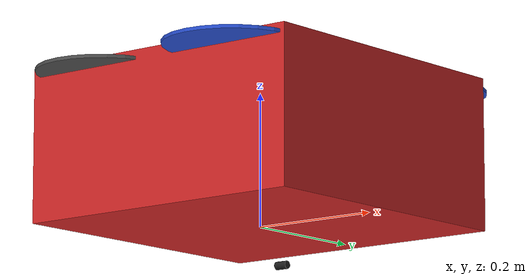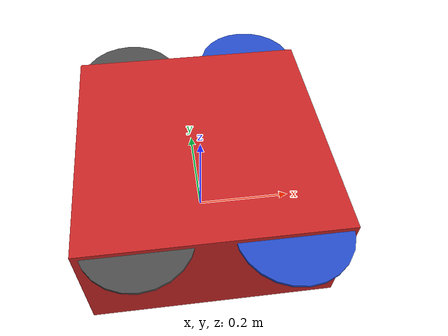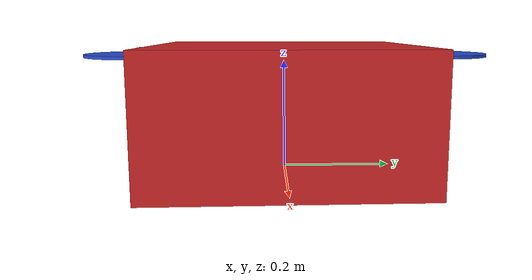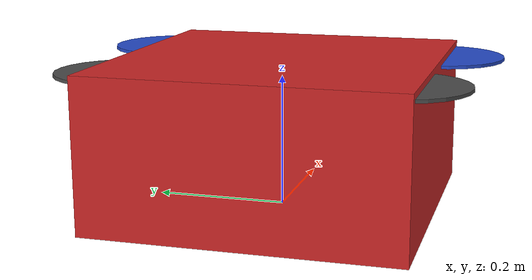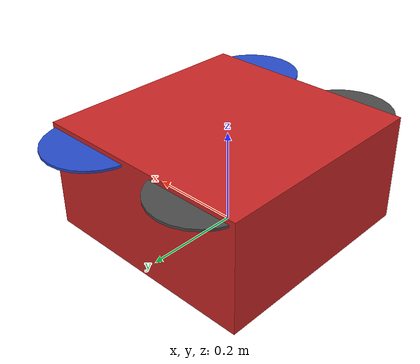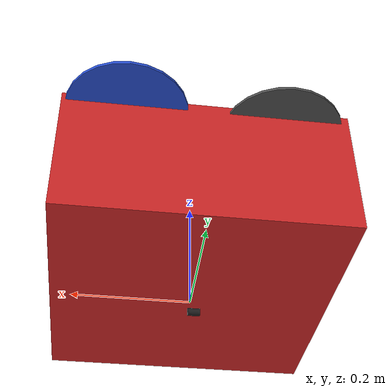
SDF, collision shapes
<?xml version='1.0'?>
<sdf version="1.6">
  <model name="iris_demo">
    <include>
      <uri>model://iris_with_standoffs</uri>
    </include>

    <include>
      <pose >0 0.05 -0.05 0 1.575 0</pose>
      <uri>model://rangefinder</uri>
    </include>

    <joint name="rangefinder_mount" type="fixed">
      <parent>iris_with_standoffs::iris::base_link</parent>
      <child>rangefinder::link</child>
    </joint>

    <!-- range plugins -->
    <plugin name="rotor_0_blade_1" filename="libLiftDragPlugin.so">
      <a0>0.3</a0>
      <alpha_stall>1.4</alpha_stall>
      <cla>4.2500</cla>
      <cda>0.10</cda>
      <cma>0.00</cma>
      <cla_stall>-0.025</cla_stall>
      <cda_stall>0.0</cda_stall>
      <cma_stall>0.0</cma_stall>
      <area>0.002</area>
      <air_density>1.2041</air_density>
      <cp>0.084 0 0</cp>
      <forward>0 1 0</forward>
      <upward>0 0 1</upward>
      <link_name>iris::rotor_0</link_name>
    </plugin>
    <plugin name="rotor_0_blade_2" filename="libLiftDragPlugin.so">
      <a0>0.3</a0>
      <alpha_stall>1.4</alpha_stall>
      <cla>4.2500</cla>
      <cda>0.10</cda>
      <cma>0.00</cma>
      <cla_stall>-0.025</cla_stall>
      <cda_stall>0.0</cda_stall>
      <cma_stall>0.0</cma_stall>
      <area>0.002</area>
      <air_density>1.2041</air_density>
      <cp>-0.084 0 0</cp>
      <forward>0 -1 0</forward>
      <upward>0 0 1</upward>
      <link_name>iris::rotor_0</link_name>
    </plugin>

    <plugin name="rotor_1_blade_1" filename="libLiftDragPlugin.so">
      <a0>0.3</a0>
      <alpha_stall>1.4</alpha_stall>
      <cla>4.2500</cla>
      <cda>0.10</cda>
      <cma>0.00</cma>
      <cla_stall>-0.025</cla_stall>
      <cda_stall>0.0</cda_stall>
      <cma_stall>0.0</cma_stall>
      <area>0.002</area>
      <air_density>1.2041</air_density>
      <cp>0.084 0 0</cp>
      <forward>0 1 0</forward>
      <upward>0 0 1</upward>
      <link_name>iris::rotor_1</link_name>
    </plugin>
    <plugin name="rotor_1_blade_2" filename="libLiftDragPlugin.so">
      <a0>0.3</a0>
      <alpha_stall>1.4</alpha_stall>
      <cla>4.2500</cla>
      <cda>0.10</cda>
      <cma>0.00</cma>
      <cla_stall>-0.025</cla_stall>
      <cda_stall>0.0</cda_stall>
      <cma_stall>0.0</cma_stall>
      <area>0.002</area>
      <air_density>1.2041</air_density>
      <cp>-0.084 0 0</cp>
      <forward>0 -1 0</forward>
      <upward>0 0 1</upward>
      <link_name>iris::rotor_1</link_name>
    </plugin>

    <plugin name="rotor_2_blade_1" filename="libLiftDragPlugin.so">
      <a0>0.3</a0>
      <alpha_stall>1.4</alpha_stall>
      <cla>4.2500</cla>
      <cda>0.10</cda>
      <cma>0.00</cma>
      <cla_stall>-0.025</cla_stall>
      <cda_stall>0.0</cda_stall>
      <cma_stall>0.0</cma_stall>
      <area>0.002</area>
      <air_density>1.2041</air_density>
      <cp>0.084 0 0</cp>
      <forward>0 -1 0</forward>
      <upward>0 0 1</upward>
      <link_name>iris::rotor_2</link_name>
    </plugin>
    <plugin name="rotor_2_blade_2" filename="libLiftDragPlugin.so">
      <a0>0.3</a0>
      <alpha_stall>1.4</alpha_stall>
      <cla>4.2500</cla>
      <cda>0.10</cda>
      <cma>0.00</cma>
      <cla_stall>-0.025</cla_stall>
      <cda_stall>0.0</cda_stall>
      <cma_stall>0.0</cma_stall>
      <area>0.002</area>
      <air_density>1.2041</air_density>
      <cp>-0.084 0 0</cp>
      <forward>0 1 0</forward>
      <upward>0 0 1</upward>
      <link_name>iris::rotor_2</link_name>
    </plugin>

    <plugin name="rotor_3_blade_1" filename="libLiftDragPlugin.so">
      <a0>0.3</a0>
      <alpha_stall>1.4</alpha_stall>
      <cla>4.2500</cla>
      <cda>0.10</cda>
      <cma>0.00</cma>
      <cla_stall>-0.025</cla_stall>
      <cda_stall>0.0</cda_stall>
      <cma_stall>0.0</cma_stall>
      <area>0.002</area>
      <air_density>1.2041</air_density>
      <cp>0.084 0 0</cp>
      <forward>0 -1 0</forward>
      <upward>0 0 1</upward>
      <link_name>iris::rotor_3</link_name>
    </plugin>
    <plugin name="rotor_3_blade_2" filename="libLiftDragPlugin.so">
      <a0>0.3</a0>
      <alpha_stall>1.4</alpha_stall>
      <cla>4.2500</cla>
      <cda>0.10</cda>
      <cma>0.00</cma>
      <cla_stall>-0.025</cla_stall>
      <cda_stall>0.0</cda_stall>
      <cma_stall>0.0</cma_stall>
      <area>0.002</area>
      <air_density>1.2041</air_density>
      <cp>-0.084 0 0</cp>
      <forward>0 1 0</forward>
      <upward>0 0 1</upward>
      <link_name>iris::rotor_3</link_name>
    </plugin>
    <plugin name="arducopter_plugin" filename="libArduPilotPlugin.so">
      <fdm_addr>127.0.0.1</fdm_addr>
      <fdm_port_in>9002</fdm_port_in>
      <fdm_port_out>9003</fdm_port_out>
      <!--
          Require by APM :
          Only change model and gazebo from XYZ to XY-Z coordinates
      -->
      <modelXYZToAirplaneXForwardZDown>0 0 0 3.141593 0 0</modelXYZToAirplaneXForwardZDown>
      <gazeboXYZToNED>0 0 0 3.141593 0 0</gazeboXYZToNED>
      <imuName>demo::iris::iris/imu_link::imu_sensor</imuName>
      <connectionTimeoutMaxCount>5</connectionTimeoutMaxCount>
      <control channel="0">
        <!--
          incoming control command [0, 1]
          so offset it by 0 to get [0, 1]
          and divide max target by 1.
          offset = 0
          multiplier = 838 max rpm / 1 = 838
        -->
        <type>VELOCITY</type>
        <offset>0</offset>
        <p_gain>0.20</p_gain>
        <i_gain>0</i_gain>
        <d_gain>0</d_gain>
        <i_max>0</i_max>
        <i_min>0</i_min>
        <cmd_max>2.5</cmd_max>
        <cmd_min>-2.5</cmd_min>
        <jointName>iris::rotor_0_joint</jointName>
        <multiplier>838</multiplier>
        <controlVelocitySlowdownSim>1</controlVelocitySlowdownSim>
      </control>
      <control channel="1">
        <type>VELOCITY</type>
        <offset>0</offset>
        <p_gain>0.20</p_gain>
        <i_gain>0</i_gain>
        <d_gain>0</d_gain>
        <i_max>0</i_max>
        <i_min>0</i_min>
        <cmd_max>2.5</cmd_max>
        <cmd_min>-2.5</cmd_min>
        <jointName>iris::rotor_1_joint</jointName>
        <multiplier>838</multiplier>
        <controlVelocitySlowdownSim>1</controlVelocitySlowdownSim>
      </control>
      <control channel="2">
        <type>VELOCITY</type>
        <offset>0</offset>
        <p_gain>0.20</p_gain>
        <i_gain>0</i_gain>
        <d_gain>0</d_gain>
        <i_max>0</i_max>
        <i_min>0</i_min>
        <cmd_max>2.5</cmd_max>
        <cmd_min>-2.5</cmd_min>
        <jointName>iris::rotor_2_joint</jointName>
        <multiplier>-838</multiplier>
        <controlVelocitySlowdownSim>1</controlVelocitySlowdownSim>
      </control>
      <control channel="3">
        <type>VELOCITY</type>
        <offset>0</offset>
        <p_gain>0.20</p_gain>
        <i_gain>0</i_gain>
        <d_gain>0</d_gain>
        <i_max>0</i_max>
        <i_min>0</i_min>
        <cmd_max>2.5</cmd_max>
        <cmd_min>-2.5</cmd_min>
        <jointName>iris::rotor_3_joint</jointName>
        <multiplier>-838</multiplier>
        <controlVelocitySlowdownSim>1</controlVelocitySlowdownSim>
      </control>
    </plugin>
    <!-- endrange plugins -->
  </model>
</sdf>

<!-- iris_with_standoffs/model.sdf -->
<sdf version='1.5'>
  <model name='iris'>
    <pose>0 0 0.194923 0 0 0</pose>
    <link name='base_link'>
      <velocity_decay>
        <linear>0.0</linear>
        <angular>0.0</angular>
      </velocity_decay>
      <inertial>
        <pose>0 0 0 0 0 0</pose>
        <mass>1.5</mass>
        <inertia>
          <ixx>0.008</ixx>
          <ixy>0</ixy>
          <ixz>0</ixz>
          <iyy>0.015</iyy>
          <iyz>0</iyz>
          <izz>0.017</izz>
        </inertia>
      </inertial>
      <collision name='base_link_collision'>
        <pose>0 0 -0.08 0 0 0</pose>
        <geometry>
          <box>
            <size>0.47 0.47 0.23</size>
          </box>
        </geometry>
        <surface>
          <contact>
            <ode>
              <max_vel>100.0</max_vel>
              <min_depth>0.001</min_depth>
            </ode>
          </contact>
          <friction>
            <ode>
              <mu>100000.0</mu>
              <mu2>100000.0</mu2>
            </ode>
          </friction>
        </surface>
      </collision>
      <visual name='base_link_visual'>
        <geometry>
          <mesh>
            <uri>model://iris_with_standoffs/meshes/iris.dae</uri>
          </mesh>
        </geometry>
        <material>
          <script>
            <name>Gazebo/Red</name>
          </script>
        </material>
      </visual>

      <visual name='front_left_leg_visual'>
        <pose>0.123 0.22 -0.11 0 0 0</pose>
        <geometry>
          <cylinder>
            <radius>0.005</radius>
            <length>0.17</length>
          </cylinder>
        </geometry>
        <material>
          <script>
            <name>Gazebo/FlatBlack</name>
            <uri>file://media/materials/scripts/gazebo.material</uri>
          </script>
        </material>
      </visual>
      <visual name='front_right_leg_visual'>
        <pose>0.123 -0.22 -0.11 0 0 0</pose>
        <geometry>
          <cylinder>
            <radius>0.005</radius>
            <length>0.17</length>
          </cylinder>
        </geometry>
        <material>
          <script>
            <name>Gazebo/FlatBlack</name>
            <uri>file://media/materials/scripts/gazebo.material</uri>
          </script>
        </material>
      </visual>
      <visual name='rear_left_leg_visual'>
        <pose>-0.140 0.21 -0.11 0 0 0</pose>
        <geometry>
          <cylinder>
            <radius>0.005</radius>
            <length>0.17</length>
          </cylinder>
        </geometry>
        <material>
          <script>
            <name>Gazebo/FlatBlack</name>
            <uri>file://media/materials/scripts/gazebo.material</uri>
          </script>
        </material>
      </visual>
      <visual name='rear_right_leg_visual'>
        <pose>-0.140 -0.21 -0.11 0 0 0</pose>
        <geometry>
          <cylinder>
            <radius>0.005</radius>
            <length>0.17</length>
          </cylinder>
        </geometry>
        <material>
          <script>
            <name>Gazebo/FlatBlack</name>
            <uri>file://media/materials/scripts/gazebo.material</uri>
          </script>
        </material>
      </visual>
    </link>
    <link name='iris/ground_truth/odometry_sensorgt_link'>
      <pose>0 0 0 0 -0 0</pose>
      <inertial>
        <pose>0 0 0 0 -0 0</pose>
        <mass>0.15</mass>
        <inertia>
          <ixx>0.0001</ixx>
          <ixy>0</ixy>
          <ixz>0</ixz>
          <iyy>0.0002</iyy>
          <iyz>0</iyz>
          <izz>0.0002</izz>
        </inertia>
      </inertial>
    </link>
    <joint name='iris/ground_truth/odometry_sensorgt_joint' type='revolute'>
      <child>iris/ground_truth/odometry_sensorgt_link</child>
      <parent>base_link</parent>
      <axis>
        <xyz>0 0 1</xyz>
        <limit>
          <lower>0</lower>
          <upper>0</upper>
          <effort>0</effort>
          <velocity>0</velocity>
        </limit>
        <dynamics>
          <damping>1.0</damping>
        </dynamics>
        <use_parent_model_frame>1</use_parent_model_frame>
      </axis>
      <physics>
        <ode>
          <implicit_spring_damper>1</implicit_spring_damper>
        </ode>
      </physics>
    </joint>
    <link name='iris/imu_link'>
      <inertial>
        <pose>0 0 0 0 0 0</pose>
        <mass>0.15</mass>
        <inertia>
          <ixx>0.00001</ixx>
          <ixy>0</ixy>
          <ixz>0</ixz>
          <iyy>0.00002</iyy>
          <iyz>0</iyz>
          <izz>0.00002</izz>
        </inertia>
      </inertial>
      <sensor name="imu_sensor" type="imu">
        <pose>0 0 0 3.141593 0 0</pose>
        <always_on>1</always_on>
        <update_rate>1000.0</update_rate>
      </sensor>
    </link>
    <joint name='iris/imu_joint' type='revolute'>
      <child>iris/imu_link</child>
      <parent>base_link</parent>
      <axis>
        <xyz>0 0 1</xyz>
        <limit>
          <lower>0</lower>
          <upper>0</upper>
          <effort>0</effort>
          <velocity>0</velocity>
        </limit>
        <dynamics>
          <damping>1.0</damping>
        </dynamics>
        <use_parent_model_frame>1</use_parent_model_frame>
      </axis>
      <physics>
        <ode>
          <implicit_spring_damper>1</implicit_spring_damper>
        </ode>
      </physics>
    </joint>
    <link name='rotor_0'>
      <pose>0.13 -0.22 0.023 0 -0 0</pose>
      <inertial>
        <pose>0 0 0 0 -0 0</pose>
        <mass>0.025</mass>
        <inertia>
          <ixx>9.75e-06</ixx>
          <ixy>0</ixy>
          <ixz>0</ixz>
          <iyy>0.000166704</iyy>
          <iyz>0</iyz>
          <izz>0.000167604</izz>
        </inertia>
      </inertial>
      <collision name='rotor_0_collision'>
        <pose>0 0 0 0 -0 0</pose>
        <geometry>
          <cylinder>
            <length>0.005</length>
            <radius>0.1</radius>
          </cylinder>
        </geometry>
        <surface>
          <contact>
            <ode/>
          </contact>
          <friction>
            <ode/>
          </friction>
        </surface>
      </collision>
      <visual name='rotor_0_visual'>
        <pose>0 0 0 0 -0 0</pose>
        <geometry>
          <mesh>
            <scale>1 1 1</scale>
            <uri>model://iris_with_standoffs/meshes/iris_prop_ccw.dae</uri>
          </mesh>
        </geometry>
        <material>
          <script>
            <name>Gazebo/Blue</name>
            <uri>__default__</uri>
          </script>
        </material>
      </visual>
      <gravity>1</gravity>
      <velocity_decay/>
      <self_collide>0</self_collide>
    </link>
    <joint name='rotor_0_joint' type='revolute'>
      <child>rotor_0</child>
      <parent>base_link</parent>
      <axis>
        <xyz>0 0 1</xyz>
        <limit>
          <lower>-1e+16</lower>
          <upper>1e+16</upper>
        </limit>
        <dynamics>
          <damping>0.004</damping>
        </dynamics>
        <use_parent_model_frame>1</use_parent_model_frame>
      </axis>
      <physics>
        <ode>
          <implicit_spring_damper>1</implicit_spring_damper>
        </ode>
      </physics>
    </joint>
    <link name='rotor_1'>
      <pose>-0.13 0.2 0.023 0 -0 0</pose>
      <inertial>
        <pose>0 0 0 0 -0 0</pose>
        <mass>0.025</mass>
        <inertia>
          <ixx>9.75e-06</ixx>
          <ixy>0</ixy>
          <ixz>0</ixz>
          <iyy>0.000166704</iyy>
          <iyz>0</iyz>
          <izz>0.000167604</izz>
        </inertia>
      </inertial>
      <collision name='rotor_1_collision'>
        <pose>0 0 0 0 -0 0</pose>
        <geometry>
          <cylinder>
            <length>0.005</length>
            <radius>0.1</radius>
          </cylinder>
        </geometry>
        <surface>
          <contact>
            <ode/>
          </contact>
          <friction>
            <ode/>
          </friction>
        </surface>
      </collision>
      <visual name='rotor_1_visual'>
        <pose>0 0 0 0 -0 0</pose>
        <geometry>
          <mesh>
            <scale>1 1 1</scale>
            <uri>model://iris_with_standoffs/meshes/iris_prop_ccw.dae</uri>
          </mesh>
        </geometry>
        <material>
          <script>
            <name>Gazebo/DarkGrey</name>
            <uri>__default__</uri>
          </script>
        </material>
      </visual>
      <gravity>1</gravity>
      <velocity_decay/>
      <self_collide>0</self_collide>
    </link>
    <joint name='rotor_1_joint' type='revolute'>
      <child>rotor_1</child>
      <parent>base_link</parent>
      <axis>
        <xyz>0 0 1</xyz>
        <limit>
          <lower>-1e+16</lower>
          <upper>1e+16</upper>
        </limit>
        <dynamics>
          <damping>0.004</damping>
        </dynamics>
        <use_parent_model_frame>1</use_parent_model_frame>
      </axis>
      <physics>
        <ode>
          <implicit_spring_damper>1</implicit_spring_damper>
        </ode>
      </physics>
    </joint>
    <link name='rotor_2'>
      <pose>0.13 0.22 0.023 0 -0 0</pose>
      <inertial>
        <pose>0 0 0 0 -0 0</pose>
        <mass>0.025</mass>
        <inertia>
          <ixx>9.75e-06</ixx>
          <ixy>0</ixy>
          <ixz>0</ixz>
          <iyy>0.000166704</iyy>
          <iyz>0</iyz>
          <izz>0.000167604</izz>
        </inertia>
      </inertial>
      <collision name='rotor_2_collision'>
        <pose>0 0 0 0 -0 0</pose>
        <geometry>
          <cylinder>
            <length>0.005</length>
            <radius>0.1</radius>
          </cylinder>
        </geometry>
        <surface>
          <contact>
            <ode/>
          </contact>
          <friction>
            <ode/>
          </friction>
        </surface>
      </collision>
      <visual name='rotor_2_visual'>
        <pose>0 0 0 0 -0 0</pose>
        <geometry>
          <mesh>
            <scale>1 1 1</scale>
            <uri>model://iris_with_standoffs/meshes/iris_prop_cw.dae</uri>
          </mesh>
        </geometry>
        <material>
          <script>
            <name>Gazebo/Blue</name>
            <uri>__default__</uri>
          </script>
        </material>
      </visual>
      <gravity>1</gravity>
      <velocity_decay/>
      <self_collide>0</self_collide>
    </link>
    <joint name='rotor_2_joint' type='revolute'>
      <child>rotor_2</child>
      <parent>base_link</parent>
      <axis>
        <xyz>0 0 1</xyz>
        <limit>
          <lower>-1e+16</lower>
          <upper>1e+16</upper>
        </limit>
        <dynamics>
          <damping>0.004</damping>
        </dynamics>
        <use_parent_model_frame>1</use_parent_model_frame>
      </axis>
      <physics>
        <ode>
          <implicit_spring_damper>1</implicit_spring_damper>
        </ode>
      </physics>
    </joint>
    <link name='rotor_3'>
      <pose>-0.13 -0.2 0.023 0 -0 0</pose>
      <inertial>
        <pose>0 0 0 0 -0 0</pose>
        <mass>0.025</mass>
        <inertia>
          <ixx>9.75e-06</ixx>
          <ixy>0</ixy>
          <ixz>0</ixz>
          <iyy>0.000166704</iyy>
          <iyz>0</iyz>
          <izz>0.000167604</izz>
        </inertia>
      </inertial>
      <collision name='rotor_3_collision'>
        <pose>0 0 0 0 -0 0</pose>
        <geometry>
          <cylinder>
            <length>0.005</length>
            <radius>0.1</radius>
          </cylinder>
        </geometry>
        <surface>
          <contact>
            <ode/>
          </contact>
          <friction>
            <ode/>
          </friction>
        </surface>
      </collision>
      <visual name='rotor_3_visual'>
        <pose>0 0 0 0 -0 0</pose>
        <geometry>
          <mesh>
            <scale>1 1 1</scale>
            <uri>model://iris_with_standoffs/meshes/iris_prop_cw.dae</uri>
          </mesh>
        </geometry>
        <material>
          <script>
            <name>Gazebo/DarkGrey</name>
            <uri>__default__</uri>
          </script>
        </material>
      </visual>
      <gravity>1</gravity>
      <velocity_decay/>
      <self_collide>0</self_collide>
    </link>
    <joint name='rotor_3_joint' type='revolute'>
      <child>rotor_3</child>
      <parent>base_link</parent>
      <axis>
        <xyz>0 0 1</xyz>
        <limit>
          <lower>-1e+16</lower>
          <upper>1e+16</upper>
        </limit>
        <dynamics>
          <damping>0.004</damping>
        </dynamics>
        <use_parent_model_frame>1</use_parent_model_frame>
      </axis>
      <physics>
        <ode>
          <implicit_spring_damper>1</implicit_spring_damper>
        </ode>
      </physics>
    </joint>
    <static>0</static>
  </model>
</sdf>

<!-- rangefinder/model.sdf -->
<sdf version="1.4">
  <model name="rangefinder">
    <link name="link">
      <pose>0 0 0 0 0 0</pose>
      <inertial>
        <pose>0 0 0 0 0 0</pose>
        <mass>0.01</mass>
        <inertia>
          <ixx>2.1733e-6</ixx>
          <ixy>0</ixy>
          <ixz>0</ixz>
          <iyy>2.1733e-6</iyy>
          <iyz>0</iyz>
          <izz>1.8e-7</izz>
        </inertia>
      </inertial>
      <collision name='collision'>
        <geometry>
          <cylinder>
            <radius>0.006</radius>
            <length>0.02</length>
          </cylinder>
        </geometry>

      </collision>
      <visual name="visual">
        <geometry>
          <cylinder>
            <radius>0.006</radius>
            <length>0.02</length>
          </cylinder>
        </geometry>
        <material>
          <script>
            <name>Gazebo/Black</name>
          </script>
        </material>
      </visual>
      <sensor name="ultra" type="ray">
        <pose>0 0 -0.03 0 1.57079633 0</pose>
        <always_on>true</always_on>
        <visualize>true</visualize>
        <update_rate>10</update_rate>
        <ray>
          <scan>
            <horizontal>
              <samples>5</samples>
              <resolution>1.000000</resolution>
              <min_angle>-0.12</min_angle>
              <max_angle>0.12</max_angle>
            </horizontal>
            <vertical>
              <samples>5</samples>
              <resolution>1.000000</resolution>
              <min_angle>-0.01</min_angle>
              <max_angle>0.01</max_angle>
            </vertical>
          </scan>
          <range>
            <min>0</min>
            <max>5</max>
            <resolution>0.1</resolution>
          </range>
        </ray>
        <plugin name="ultrasonic_sensor" filename="libgazebo_ros_ray_sensor.so">
        <output_type>sensor_msgs/LaserScan</output_type>
          <frame_name>link</frame_name>
        </plugin>
      </sensor>
    </link>
  </model>
</sdf>
